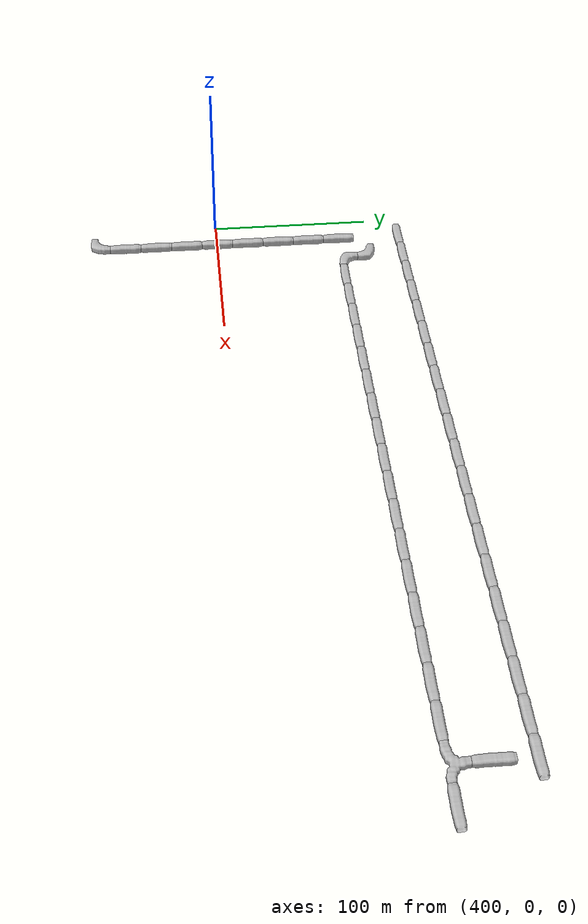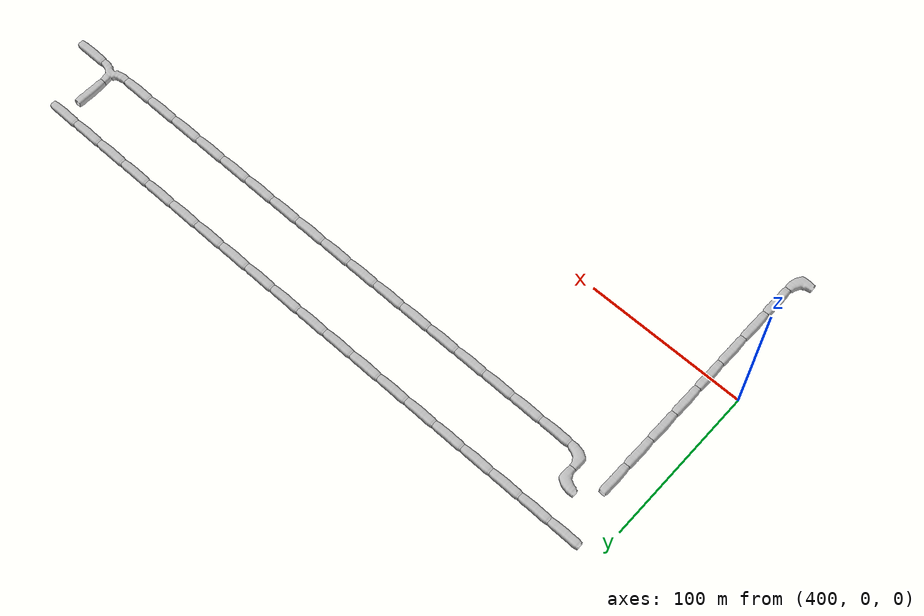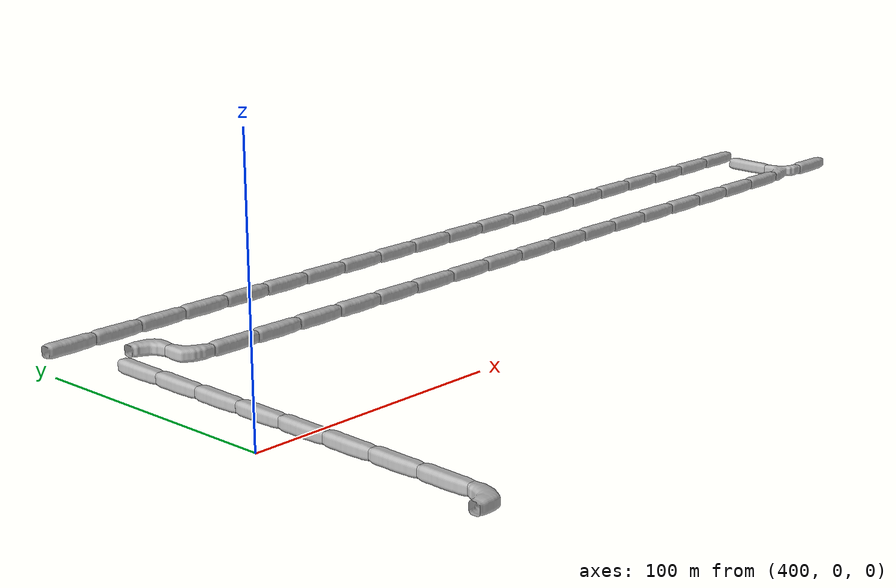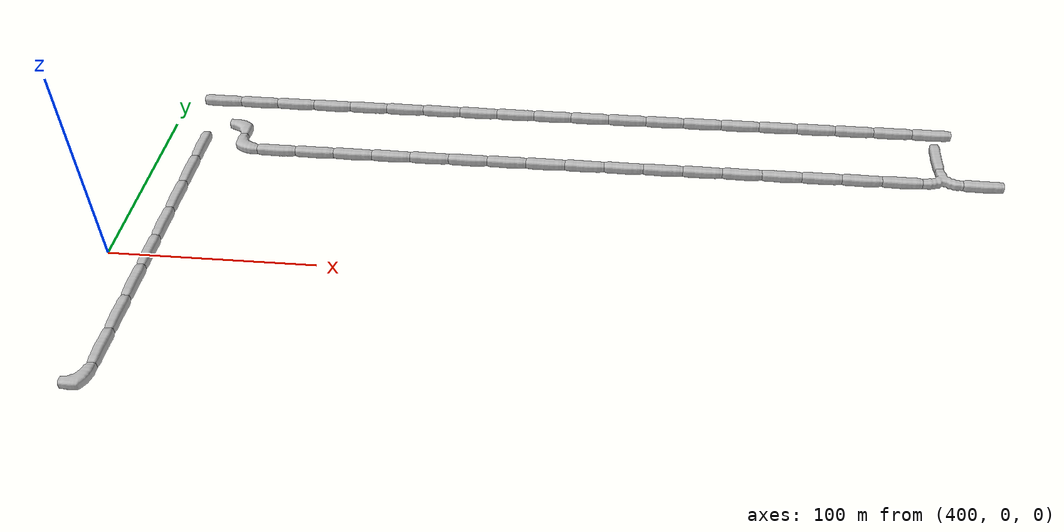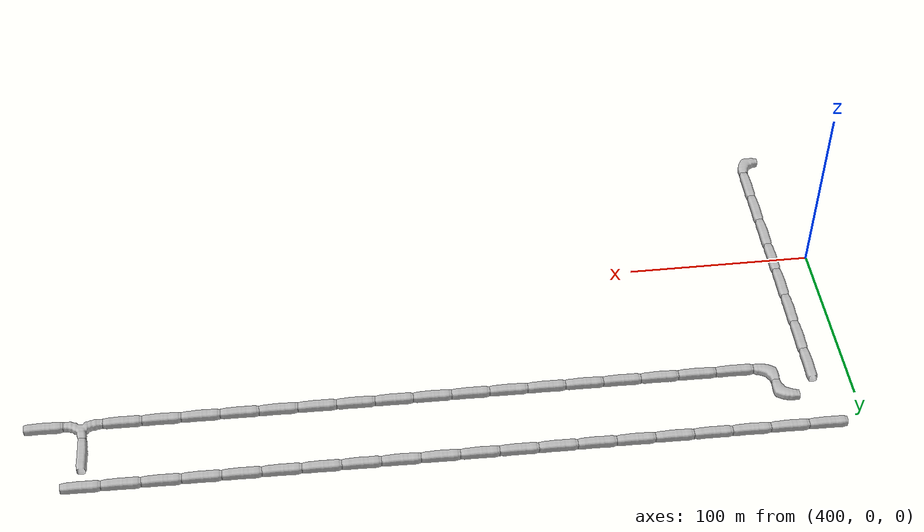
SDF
<sdf version="1.6">
 <world name="cave_8000_2">
  <include>
   <static>true</static>
   <name>cave_22_5</name>
   <pose>440 100 0 0 0 3.141592653589793</pose>
   <uri>model://cave_L_20m</uri>
  </include>
  <include>
   <static>true</static>
   <name>cave_22_4</name>
   <pose>440 80 0 0 0 0.0</pose>
   <uri>model://cave_L_20m</uri>
  </include>
  <include>
   <static>true</static>
   <name>cave_23_4</name>
   <pose>460 80 0 0 0 1.5707963267948966</pose>
   <uri>model://cave_straight_20m</uri>
  </include>
  <include>
   <static>true</static>
   <name>cave_24_4</name>
   <pose>480 80 0 0 0 1.5707963267948966</pose>
   <uri>model://cave_straight_20m</uri>
  </include>
  <include>
   <static>true</static>
   <name>cave_25_4</name>
   <pose>500 80 0 0 0 1.5707963267948966</pose>
   <uri>model://cave_straight_20m</uri>
  </include>
  <include>
   <static>true</static>
   <name>cave_26_4</name>
   <pose>520 80 0 0 0 1.5707963267948966</pose>
   <uri>model://cave_straight_20m</uri>
  </include>
  <include>
   <static>true</static>
   <name>cave_27_4</name>
   <pose>540 80 0 0 0 1.5707963267948966</pose>
   <uri>model://cave_straight_20m</uri>
  </include>
  <include>
   <static>true</static>
   <name>cave_28_4</name>
   <pose>560 80 0 0 0 1.5707963267948966</pose>
   <uri>model://cave_straight_20m</uri>
  </include>
  <include>
   <static>true</static>
   <name>cave_29_4</name>
   <pose>580 80 0 0 0 1.5707963267948966</pose>
   <uri>model://cave_straight_20m</uri>
  </include>
  <include>
   <static>true</static>
   <name>cave_30_4</name>
   <pose>600 80 0 0 0 1.5707963267948966</pose>
   <uri>model://cave_straight_20m</uri>
  </include>
  <include>
   <static>true</static>
   <name>cave_31_4</name>
   <pose>620 80 0 0 0 1.5707963267948966</pose>
   <uri>model://cave_straight_20m</uri>
  </include>
  <include>
   <static>true</static>
   <name>cave_32_4</name>
   <pose>640 80 0 0 0 1.5707963267948966</pose>
   <uri>model://cave_straight_20m</uri>
  </include>
  <include>
   <static>true</static>
   <name>cave_33_4</name>
   <pose>660 80 0 0 0 1.5707963267948966</pose>
   <uri>model://cave_straight_20m</uri>
  </include>
  <include>
   <static>true</static>
   <name>cave_34_4</name>
   <pose>680 80 0 0 0 1.5707963267948966</pose>
   <uri>model://cave_straight_20m</uri>
  </include>
  <include>
   <static>true</static>
   <name>cave_35_4</name>
   <pose>700 80 0 0 0 1.5707963267948966</pose>
   <uri>model://cave_straight_20m</uri>
  </include>
  <include>
   <static>true</static>
   <name>cave_36_4</name>
   <pose>720 80 0 0 0 1.5707963267948966</pose>
   <uri>model://cave_straight_20m</uri>
  </include>
  <include>
   <static>true</static>
   <name>cave_37_4</name>
   <pose>740 80 0 0 0 1.5707963267948966</pose>
   <uri>model://cave_straight_20m</uri>
  </include>
  <include>
   <static>true</static>
   <name>cave_38_4</name>
   <pose>760 80 0 0 0 1.5707963267948966</pose>
   <uri>model://cave_straight_20m</uri>
  </include>
  <include>
   <static>true</static>
   <name>cave_39_4</name>
   <pose>780 80 0 0 0 1.5707963267948966</pose>
   <uri>model://cave_straight_20m</uri>
  </include>
  <include>
   <static>true</static>
   <name>cave_40_4</name>
   <pose>800 80 0 0 0 0.0</pose>
   <uri>model://cave_3way_20m</uri>
  </include>
  <include>
   <static>true</static>
   <name>cave_41_4</name>
   <pose>820 80 0 0 0 1.5707963267948966</pose>
   <uri>model://cave_straight_20m</uri>
  </include>
  <include>
   <static>true</static>
   <name>cave_40_5</name>
   <pose>800 100 0 0 0 0.0</pose>
   <uri>model://cave_straight_20m</uri>
  </include>
  <include>
   <static>true</static>
   <name>cave_21_6</name>
   <pose>420 120 0 0 0 1.5707963267948966</pose>
   <uri>model://cave_straight_20m</uri>
  </include>
  <include>
   <static>true</static>
   <name>cave_22_6</name>
   <pose>440 120 0 0 0 1.5707963267948966</pose>
   <uri>model://cave_straight_20m</uri>
  </include>
  <include>
   <static>true</static>
   <name>cave_23_6</name>
   <pose>460 120 0 0 0 1.5707963267948966</pose>
   <uri>model://cave_straight_20m</uri>
  </include>
  <include>
   <static>true</static>
   <name>cave_24_6</name>
   <pose>480 120 0 0 0 1.5707963267948966</pose>
   <uri>model://cave_straight_20m</uri>
  </include>
  <include>
   <static>true</static>
   <name>cave_25_6</name>
   <pose>500 120 0 0 0 1.5707963267948966</pose>
   <uri>model://cave_straight_20m</uri>
  </include>
  <include>
   <static>true</static>
   <name>cave_26_6</name>
   <pose>520 120 0 0 0 1.5707963267948966</pose>
   <uri>model://cave_straight_20m</uri>
  </include>
  <include>
   <static>true</static>
   <name>cave_27_6</name>
   <pose>540 120 0 0 0 1.5707963267948966</pose>
   <uri>model://cave_straight_20m</uri>
  </include>
  <include>
   <static>true</static>
   <name>cave_28_6</name>
   <pose>560 120 0 0 0 1.5707963267948966</pose>
   <uri>model://cave_straight_20m</uri>
  </include>
  <include>
   <static>true</static>
   <name>cave_29_6</name>
   <pose>580 120 0 0 0 1.5707963267948966</pose>
   <uri>model://cave_straight_20m</uri>
  </include>
  <include>
   <static>true</static>
   <name>cave_30_6</name>
   <pose>600 120 0 0 0 1.5707963267948966</pose>
   <uri>model://cave_straight_20m</uri>
  </include>
  <include>
   <static>true</static>
   <name>cave_31_6</name>
   <pose>620 120 0 0 0 1.5707963267948966</pose>
   <uri>model://cave_straight_20m</uri>
  </include>
  <include>
   <static>true</static>
   <name>cave_32_6</name>
   <pose>640 120 0 0 0 1.5707963267948966</pose>
   <uri>model://cave_straight_20m</uri>
  </include>
  <include>
   <static>true</static>
   <name>cave_33_6</name>
   <pose>660 120 0 0 0 1.5707963267948966</pose>
   <uri>model://cave_straight_20m</uri>
  </include>
  <include>
   <static>true</static>
   <name>cave_34_6</name>
   <pose>680 120 0 0 0 1.5707963267948966</pose>
   <uri>model://cave_straight_20m</uri>
  </include>
  <include>
   <static>true</static>
   <name>cave_35_6</name>
   <pose>700 120 0 0 0 1.5707963267948966</pose>
   <uri>model://cave_straight_20m</uri>
  </include>
  <include>
   <static>true</static>
   <name>cave_36_6</name>
   <pose>720 120 0 0 0 1.5707963267948966</pose>
   <uri>model://cave_straight_20m</uri>
  </include>
  <include>
   <static>true</static>
   <name>cave_37_6</name>
   <pose>740 120 0 0 0 1.5707963267948966</pose>
   <uri>model://cave_straight_20m</uri>
  </include>
  <include>
   <static>true</static>
   <name>cave_38_6</name>
   <pose>760 120 0 0 0 1.5707963267948966</pose>
   <uri>model://cave_straight_20m</uri>
  </include>
  <include>
   <static>true</static>
   <name>cave_39_6</name>
   <pose>780 120 0 0 0 1.5707963267948966</pose>
   <uri>model://cave_straight_20m</uri>
  </include>
  <include>
   <static>true</static>
   <name>cave_40_6</name>
   <pose>800 120 0 0 0 1.5707963267948966</pose>
   <uri>model://cave_straight_20m</uri>
  </include>
  <include>
   <static>true</static>
   <name>cave_21_-4</name>
   <pose>420 -80 0 0 0 1.5707963267948966</pose>
   <uri>model://cave_L_20m</uri>
  </include>
  <include>
   <static>true</static>
   <name>cave_21_-3</name>
   <pose>420 -60 0 0 0 0.0</pose>
   <uri>model://cave_straight_20m</uri>
  </include>
  <include>
   <static>true</static>
   <name>cave_21_-2</name>
   <pose>420 -40 0 0 0 0.0</pose>
   <uri>model://cave_straight_20m</uri>
  </include>
  <include>
   <static>true</static>
   <name>cave_21_-1</name>
   <pose>420 -20 0 0 0 0.0</pose>
   <uri>model://cave_straight_20m</uri>
  </include>
  <include>
   <static>true</static>
   <name>cave_21_0</name>
   <pose>420 0 0 0 0 0.0</pose>
   <uri>model://cave_straight_20m</uri>
  </include>
  <include>
   <static>true</static>
   <name>cave_21_1</name>
   <pose>420 20 0 0 0 0.0</pose>
   <uri>model://cave_straight_20m</uri>
  </include>
  <include>
   <static>true</static>
   <name>cave_21_2</name>
   <pose>420 40 0 0 0 0.0</pose>
   <uri>model://cave_straight_20m</uri>
  </include>
  <include>
   <static>true</static>
   <name>cave_21_3</name>
   <pose>420 60 0 0 0 0.0</pose>
   <uri>model://cave_straight_20m</uri>
  </include>
  <include>
   <static>true</static>
   <name>cave_21_4</name>
   <pose>420 80 0 0 0 0.0</pose>
   <uri>model://cave_straight_20m</uri>
  </include>
 </world>
</sdf>
